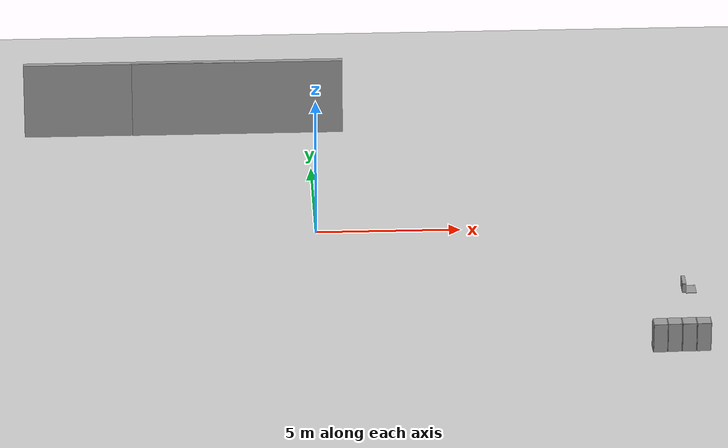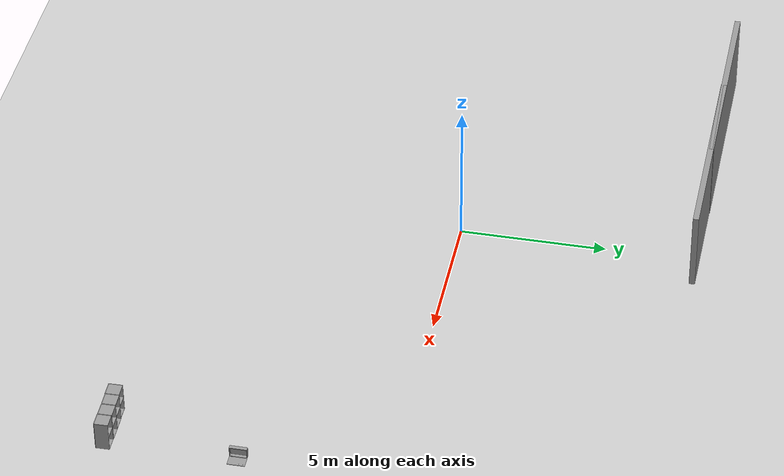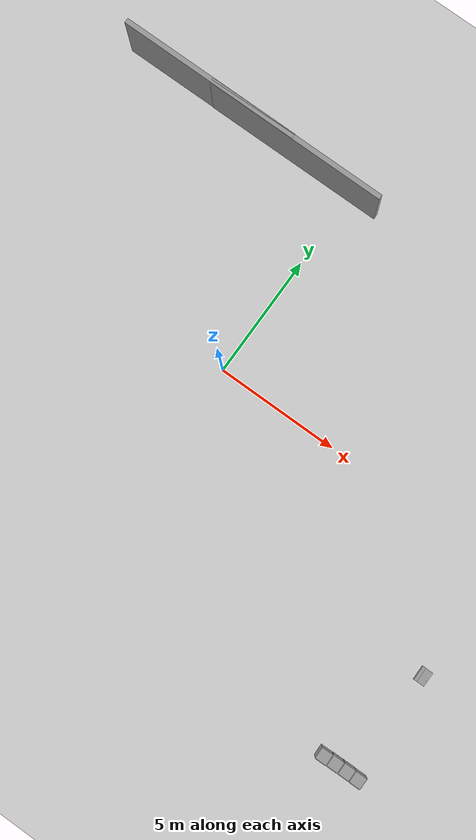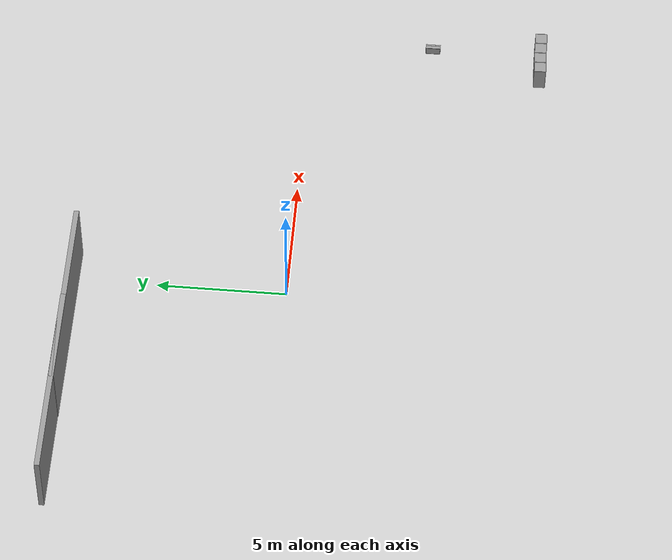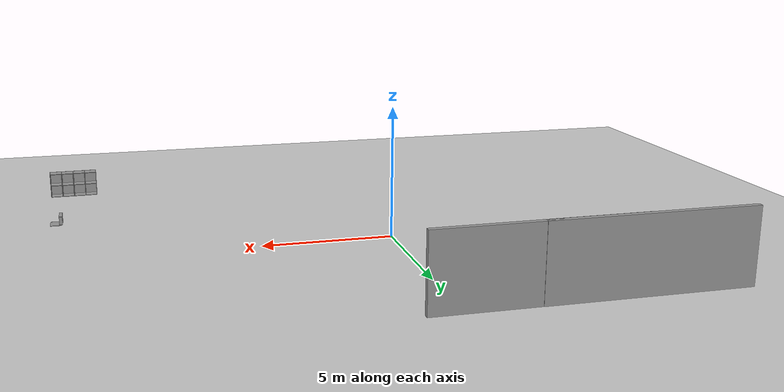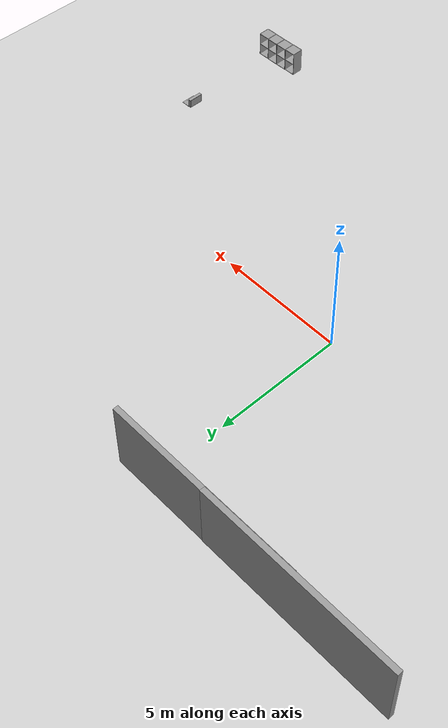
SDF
<sdf version="1.9">
 <world name="factory">
  <model name="grey_wall">
   <static>true</static>
   <link name="link">
    <pose>0 0 1.4 0 -0 0</pose>
    <collision name="collision"><geometry><box><size>7.5 0.2 2.8</size></box></geometry></collision>
    <visual name="visual">
     <cast_shadows>0</cast_shadows>
     <geometry><box><size>7.5 0.2 2.8</size></box></geometry>
     <material>
      <ambient>0.5 0.5 0.5 1</ambient>
      <diffuse>0.6 0.6 0.6 1</diffuse>
      <specular>0.2 0.2 0.2 1</specular>
     </material>
    </visual>
   </link>
   <pose>-6.34942 8.1136 0 0 -0 0</pose>
  </model>
  <model name="grey_wall_clone">
   <static>true</static>
   <link name="link">
    <pose>0 0 1.4 0 -0 0</pose>
    <collision name="collision"><geometry><box><size>7.5 0.2 2.8</size></box></geometry></collision>
    <visual name="visual">
     <cast_shadows>0</cast_shadows>
     <geometry><box><size>7.5 0.2 2.8</size></box></geometry>
     <material>
      <ambient>0.5 0.5 0.5 1</ambient>
      <diffuse>0.6 0.6 0.6 1</diffuse>
      <specular>0.2 0.2 0.2 1</specular>
     </material>
    </visual>
   </link>
   <pose>-2.50623 8.09985 0 0 -0 0</pose>
  </model>
  <model name="cabinet_clone">
   <static>true</static>
   <link name="cabinet_bottom_plate">
    <inertial>
     <pose>0 0 -1 0 -0 0</pose>
     <inertia><ixx>2.05</ixx><ixy>0</ixy><ixz>0</ixz><iyy>2.05</iyy><iyz>0</iyz><izz>2.05</izz></inertia>
     <mass>25</mass>
    </inertial>
    <collision name="cabinet_bottom_plate_geom">
     <pose>0 0 0.01 0 -0 0</pose>
     <geometry><box><size>0.45 0.45 0.02</size></box></geometry>
    </collision>
    <visual name="cabinet_bottom_plate_geom_visual">
     <pose>0 0 0.01 0 -0 0</pose>
     <geometry><box><size>0.45 0.45 0.02</size></box></geometry>
     <material>
      <ambient>0.5 0.5 0.5 1</ambient>
      <diffuse>0.6 0.6 0.6 1</diffuse>
      <specular>0.2 0.2 0.2 1</specular>
     </material>
    </visual>
    <collision name="cabinet_bottom_plate_geom_cabinet_back_plate">
     <pose>0.235 0 0.51 0 -0 0</pose>
     <geometry><box><size>0.02 0.45 1.02</size></box></geometry>
    </collision>
    <visual name="cabinet_bottom_plate_geom_cabinet_back_plate_visual">
     <pose>0.235 0 0.51 0 -0 0</pose>
     <geometry><box><size>0.02 0.45 1.02</size></box></geometry>
     <material>
      <ambient>0.5 0.5 0.5 1</ambient>
      <diffuse>0.6 0.6 0.6 1</diffuse>
      <specular>0.2 0.2 0.2 1</specular>
     </material>
    </visual>
    <collision name="cabinet_bottom_plate_geom_cabinet_left_plate">
     <pose>0 0.235 0.51 0 -0 0</pose>
     <geometry><box><size>0.45 0.02 1.02</size></box></geometry>
    </collision>
    <visual name="cabinet_bottom_plate_geom_cabinet_left_plate_visual">
     <pose>0 0.235 0.51 0 -0 0</pose>
     <geometry><box><size>0.45 0.02 1.02</size></box></geometry>
     <material>
      <ambient>0.5 0.5 0.5 1</ambient>
      <diffuse>0.6 0.6 0.6 1</diffuse>
      <specular>0.2 0.2 0.2 1</specular>
     </material>
    </visual>
    <collision name="cabinet_bottom_plate_geom_cabinet_middle_plate">
     <pose>0 0 0.51 0 -0 0</pose>
     <geometry><box><size>0.45 0.45 0.02</size></box></geometry>
    </collision>
    <visual name="cabinet_bottom_plate_geom_cabinet_middle_plate_visual">
     <pose>0 0 0.51 0 -0 0</pose>
     <geometry><box><size>0.45 0.45 0.02</size></box></geometry>
     <material>
      <ambient>0.5 0.5 0.5 1</ambient>
      <diffuse>0.6 0.6 0.6 1</diffuse>
      <specular>0.2 0.2 0.2 1</specular>
     </material>
    </visual>
    <collision name="cabinet_bottom_plate_geom_cabinet_right_plate">
     <pose>0 -0.235 0.51 0 -0 0</pose>
     <geometry><box><size>0.45 0.02 1.02</size></box></geometry>
    </collision>
    <visual name="cabinet_bottom_plate_geom_cabinet_right_plate_visual">
     <pose>0 -0.235 0.51 0 -0 0</pose>
     <geometry><box><size>0.45 0.02 1.02</size></box></geometry>
     <material>
      <ambient>0.5 0.5 0.5 1</ambient>
      <diffuse>0.6 0.6 0.6 1</diffuse>
      <specular>0.2 0.2 0.2 1</specular>
     </material>
    </visual>
    <collision name="cabinet_bottom_plate_geom_cabinet_top_plate">
     <pose>0 0 1.01 0 -0 0</pose>
     <geometry><box><size>0.45 0.45 0.02</size></box></geometry>
    </collision>
    <visual name="cabinet_bottom_plate_geom_cabinet_top_plate_visual">
     <pose>0 0 1.01 0 -0 0</pose>
     <geometry><box><size>0.45 0.45 0.02</size></box></geometry>
     <material>
      <ambient>0.5 0.5 0.5 1</ambient>
      <diffuse>0.6 0.6 0.6 1</diffuse>
      <specular>0.2 0.2 0.2 1</specular>
     </material>
    </visual>
   </link>
   <pose>12.5585 -9.14446 0.037072 0 0 -1.55676</pose>
  </model>
  <model name="cabinet_clone_0">
   <static>true</static>
   <link name="cabinet_bottom_plate">
    <inertial>
     <pose>0 0 -1 0 -0 0</pose>
     <inertia><ixx>2.05</ixx><ixy>0</ixy><ixz>0</ixz><iyy>2.05</iyy><iyz>0</iyz><izz>2.05</izz></inertia>
     <mass>25</mass>
    </inertial>
    <collision name="cabinet_bottom_plate_geom">
     <pose>0 0 0.01 0 -0 0</pose>
     <geometry><box><size>0.45 0.45 0.02</size></box></geometry>
    </collision>
    <visual name="cabinet_bottom_plate_geom_visual">
     <pose>0 0 0.01 0 -0 0</pose>
     <geometry><box><size>0.45 0.45 0.02</size></box></geometry>
     <material>
      <ambient>0.5 0.5 0.5 1</ambient>
      <diffuse>0.6 0.6 0.6 1</diffuse>
      <specular>0.2 0.2 0.2 1</specular>
     </material>
    </visual>
    <collision name="cabinet_bottom_plate_geom_cabinet_back_plate">
     <pose>0.235 0 0.51 0 -0 0</pose>
     <geometry><box><size>0.02 0.45 1.02</size></box></geometry>
    </collision>
    <visual name="cabinet_bottom_plate_geom_cabinet_back_plate_visual">
     <pose>0.235 0 0.51 0 -0 0</pose>
     <geometry><box><size>0.02 0.45 1.02</size></box></geometry>
     <material>
      <ambient>0.5 0.5 0.5 1</ambient>
      <diffuse>0.6 0.6 0.6 1</diffuse>
      <specular>0.2 0.2 0.2 1</specular>
     </material>
    </visual>
    <collision name="cabinet_bottom_plate_geom_cabinet_left_plate">
     <pose>0 0.235 0.51 0 -0 0</pose>
     <geometry><box><size>0.45 0.02 1.02</size></box></geometry>
    </collision>
    <visual name="cabinet_bottom_plate_geom_cabinet_left_plate_visual">
     <pose>0 0.235 0.51 0 -0 0</pose>
     <geometry><box><size>0.45 0.02 1.02</size></box></geometry>
     <material>
      <ambient>0.5 0.5 0.5 1</ambient>
      <diffuse>0.6 0.6 0.6 1</diffuse>
      <specular>0.2 0.2 0.2 1</specular>
     </material>
    </visual>
    <collision name="cabinet_bottom_plate_geom_cabinet_middle_plate">
     <pose>0 0 0.51 0 -0 0</pose>
     <geometry><box><size>0.45 0.45 0.02</size></box></geometry>
    </collision>
    <visual name="cabinet_bottom_plate_geom_cabinet_middle_plate_visual">
     <pose>0 0 0.51 0 -0 0</pose>
     <geometry><box><size>0.45 0.45 0.02</size></box></geometry>
     <material>
      <ambient>0.5 0.5 0.5 1</ambient>
      <diffuse>0.6 0.6 0.6 1</diffuse>
      <specular>0.2 0.2 0.2 1</specular>
     </material>
    </visual>
    <collision name="cabinet_bottom_plate_geom_cabinet_right_plate">
     <pose>0 -0.235 0.51 0 -0 0</pose>
     <geometry><box><size>0.45 0.02 1.02</size></box></geometry>
    </collision>
    <visual name="cabinet_bottom_plate_geom_cabinet_right_plate_visual">
     <pose>0 -0.235 0.51 0 -0 0</pose>
     <geometry><box><size>0.45 0.02 1.02</size></box></geometry>
     <material>
      <ambient>0.5 0.5 0.5 1</ambient>
      <diffuse>0.6 0.6 0.6 1</diffuse>
      <specular>0.2 0.2 0.2 1</specular>
     </material>
    </visual>
    <collision name="cabinet_bottom_plate_geom_cabinet_top_plate">
     <pose>0 0 1.01 0 -0 0</pose>
     <geometry><box><size>0.45 0.45 0.02</size></box></geometry>
    </collision>
    <visual name="cabinet_bottom_plate_geom_cabinet_top_plate_visual">
     <pose>0 0 1.01 0 -0 0</pose>
     <geometry><box><size>0.45 0.45 0.02</size></box></geometry>
     <material>
      <ambient>0.5 0.5 0.5 1</ambient>
      <diffuse>0.6 0.6 0.6 1</diffuse>
      <specular>0.2 0.2 0.2 1</specular>
     </material>
    </visual>
   </link>
   <pose>12.0748 -9.14339 0.037072 0 0 -1.55676</pose>
  </model>
  <model name="cabinet_clone_1">
   <static>true</static>
   <link name="cabinet_bottom_plate">
    <inertial>
     <pose>0 0 -1 0 -0 0</pose>
     <inertia><ixx>2.05</ixx><ixy>0</ixy><ixz>0</ixz><iyy>2.05</iyy><iyz>0</iyz><izz>2.05</izz></inertia>
     <mass>25</mass>
    </inertial>
    <collision name="cabinet_bottom_plate_geom">
     <pose>0 0 0.01 0 -0 0</pose>
     <geometry><box><size>0.45 0.45 0.02</size></box></geometry>
    </collision>
    <visual name="cabinet_bottom_plate_geom_visual">
     <pose>0 0 0.01 0 -0 0</pose>
     <geometry><box><size>0.45 0.45 0.02</size></box></geometry>
     <material>
      <ambient>0.5 0.5 0.5 1</ambient>
      <diffuse>0.6 0.6 0.6 1</diffuse>
      <specular>0.2 0.2 0.2 1</specular>
     </material>
    </visual>
    <collision name="cabinet_bottom_plate_geom_cabinet_back_plate">
     <pose>0.235 0 0.51 0 -0 0</pose>
     <geometry><box><size>0.02 0.45 1.02</size></box></geometry>
    </collision>
    <visual name="cabinet_bottom_plate_geom_cabinet_back_plate_visual">
     <pose>0.235 0 0.51 0 -0 0</pose>
     <geometry><box><size>0.02 0.45 1.02</size></box></geometry>
     <material>
      <ambient>0.5 0.5 0.5 1</ambient>
      <diffuse>0.6 0.6 0.6 1</diffuse>
      <specular>0.2 0.2 0.2 1</specular>
     </material>
    </visual>
    <collision name="cabinet_bottom_plate_geom_cabinet_left_plate">
     <pose>0 0.235 0.51 0 -0 0</pose>
     <geometry><box><size>0.45 0.02 1.02</size></box></geometry>
    </collision>
    <visual name="cabinet_bottom_plate_geom_cabinet_left_plate_visual">
     <pose>0 0.235 0.51 0 -0 0</pose>
     <geometry><box><size>0.45 0.02 1.02</size></box></geometry>
     <material>
      <ambient>0.5 0.5 0.5 1</ambient>
      <diffuse>0.6 0.6 0.6 1</diffuse>
      <specular>0.2 0.2 0.2 1</specular>
     </material>
    </visual>
    <collision name="cabinet_bottom_plate_geom_cabinet_middle_plate">
     <pose>0 0 0.51 0 -0 0</pose>
     <geometry><box><size>0.45 0.45 0.02</size></box></geometry>
    </collision>
    <visual name="cabinet_bottom_plate_geom_cabinet_middle_plate_visual">
     <pose>0 0 0.51 0 -0 0</pose>
     <geometry><box><size>0.45 0.45 0.02</size></box></geometry>
     <material>
      <ambient>0.5 0.5 0.5 1</ambient>
      <diffuse>0.6 0.6 0.6 1</diffuse>
      <specular>0.2 0.2 0.2 1</specular>
     </material>
    </visual>
    <collision name="cabinet_bottom_plate_geom_cabinet_right_plate">
     <pose>0 -0.235 0.51 0 -0 0</pose>
     <geometry><box><size>0.45 0.02 1.02</size></box></geometry>
    </collision>
    <visual name="cabinet_bottom_plate_geom_cabinet_right_plate_visual">
     <pose>0 -0.235 0.51 0 -0 0</pose>
     <geometry><box><size>0.45 0.02 1.02</size></box></geometry>
     <material>
      <ambient>0.5 0.5 0.5 1</ambient>
      <diffuse>0.6 0.6 0.6 1</diffuse>
      <specular>0.2 0.2 0.2 1</specular>
     </material>
    </visual>
    <collision name="cabinet_bottom_plate_geom_cabinet_top_plate">
     <pose>0 0 1.01 0 -0 0</pose>
     <geometry><box><size>0.45 0.45 0.02</size></box></geometry>
    </collision>
    <visual name="cabinet_bottom_plate_geom_cabinet_top_plate_visual">
     <pose>0 0 1.01 0 -0 0</pose>
     <geometry><box><size>0.45 0.45 0.02</size></box></geometry>
     <material>
      <ambient>0.5 0.5 0.5 1</ambient>
      <diffuse>0.6 0.6 0.6 1</diffuse>
      <specular>0.2 0.2 0.2 1</specular>
     </material>
    </visual>
   </link>
   <pose>11.5886 -9.15198 0.037072 0 0 -1.55676</pose>
  </model>
  <model name="cabinet_clone_2">
   <static>true</static>
   <link name="cabinet_bottom_plate">
    <inertial>
     <pose>0 0 -1 0 -0 0</pose>
     <inertia><ixx>2.05</ixx><ixy>0</ixy><ixz>0</ixz><iyy>2.05</iyy><iyz>0</iyz><izz>2.05</izz></inertia>
     <mass>25</mass>
    </inertial>
    <collision name="cabinet_bottom_plate_geom">
     <pose>0 0 0.01 0 -0 0</pose>
     <geometry><box><size>0.45 0.45 0.02</size></box></geometry>
    </collision>
    <visual name="cabinet_bottom_plate_geom_visual">
     <pose>0 0 0.01 0 -0 0</pose>
     <geometry><box><size>0.45 0.45 0.02</size></box></geometry>
     <material>
      <ambient>0.5 0.5 0.5 1</ambient>
      <diffuse>0.6 0.6 0.6 1</diffuse>
      <specular>0.2 0.2 0.2 1</specular>
     </material>
    </visual>
    <collision name="cabinet_bottom_plate_geom_cabinet_back_plate">
     <pose>0.235 0 0.51 0 -0 0</pose>
     <geometry><box><size>0.02 0.45 1.02</size></box></geometry>
    </collision>
    <visual name="cabinet_bottom_plate_geom_cabinet_back_plate_visual">
     <pose>0.235 0 0.51 0 -0 0</pose>
     <geometry><box><size>0.02 0.45 1.02</size></box></geometry>
     <material>
      <ambient>0.5 0.5 0.5 1</ambient>
      <diffuse>0.6 0.6 0.6 1</diffuse>
      <specular>0.2 0.2 0.2 1</specular>
     </material>
    </visual>
    <collision name="cabinet_bottom_plate_geom_cabinet_left_plate">
     <pose>0 0.235 0.51 0 -0 0</pose>
     <geometry><box><size>0.45 0.02 1.02</size></box></geometry>
    </collision>
    <visual name="cabinet_bottom_plate_geom_cabinet_left_plate_visual">
     <pose>0 0.235 0.51 0 -0 0</pose>
     <geometry><box><size>0.45 0.02 1.02</size></box></geometry>
     <material>
      <ambient>0.5 0.5 0.5 1</ambient>
      <diffuse>0.6 0.6 0.6 1</diffuse>
      <specular>0.2 0.2 0.2 1</specular>
     </material>
    </visual>
    <collision name="cabinet_bottom_plate_geom_cabinet_middle_plate">
     <pose>0 0 0.51 0 -0 0</pose>
     <geometry><box><size>0.45 0.45 0.02</size></box></geometry>
    </collision>
    <visual name="cabinet_bottom_plate_geom_cabinet_middle_plate_visual">
     <pose>0 0 0.51 0 -0 0</pose>
     <geometry><box><size>0.45 0.45 0.02</size></box></geometry>
     <material>
      <ambient>0.5 0.5 0.5 1</ambient>
      <diffuse>0.6 0.6 0.6 1</diffuse>
      <specular>0.2 0.2 0.2 1</specular>
     </material>
    </visual>
    <collision name="cabinet_bottom_plate_geom_cabinet_right_plate">
     <pose>0 -0.235 0.51 0 -0 0</pose>
     <geometry><box><size>0.45 0.02 1.02</size></box></geometry>
    </collision>
    <visual name="cabinet_bottom_plate_geom_cabinet_right_plate_visual">
     <pose>0 -0.235 0.51 0 -0 0</pose>
     <geometry><box><size>0.45 0.02 1.02</size></box></geometry>
     <material>
      <ambient>0.5 0.5 0.5 1</ambient>
      <diffuse>0.6 0.6 0.6 1</diffuse>
      <specular>0.2 0.2 0.2 1</specular>
     </material>
    </visual>
    <collision name="cabinet_bottom_plate_geom_cabinet_top_plate">
     <pose>0 0 1.01 0 -0 0</pose>
     <geometry><box><size>0.45 0.45 0.02</size></box></geometry>
    </collision>
    <visual name="cabinet_bottom_plate_geom_cabinet_top_plate_visual">
     <pose>0 0 1.01 0 -0 0</pose>
     <geometry><box><size>0.45 0.45 0.02</size></box></geometry>
     <material>
      <ambient>0.5 0.5 0.5 1</ambient>
      <diffuse>0.6 0.6 0.6 1</diffuse>
      <specular>0.2 0.2 0.2 1</specular>
     </material>
    </visual>
   </link>
   <pose>11.1088 -9.16946 0.037072 0 0 -1.55676</pose>
  </model>
  <model name="wooden_case_clone">
   <static>true</static>
   <link name="base">
    <pose>0 0 0.024 0 -0 0</pose>
    <inertial>
     <pose>-0.022184 0 0.171592 0 -0 0</pose>
     <mass>3.96264</mass>
     <inertia>
      <ixx>0.213536</ixx>
      <ixy>0</ixy>
      <ixz>0.000779377</ixz>
      <iyy>0.0708943</iyy>
      <iyz>0</iyz>
      <izz>0.154604</izz>
     </inertia>
    </inertial>
    <collision name="collision_back">
     <pose>-0.053975 0 0.1778 0 -0 0</pose>
     <geometry><box><size>0.01905 0.5461 0.3175</size></box></geometry>
     <surface>
      <contact>
       <poissons_ratio>0.347</poissons_ratio>
       <elastic_modulus>8.8e+09</elastic_modulus>
       <ode><kp>100000</kp><kd>100</kd><max_vel>100</max_vel><min_depth>0.001</min_depth></ode>
      </contact>
      <friction>
       <torsional>
        <coefficient>1</coefficient>
        <use_patch_radius>0</use_patch_radius>
        <surface_radius>0.01</surface_radius>
       </torsional>
      </friction>
     </surface>
    </collision>
    <visual name="visual_back">
     <pose>-0.053975 0 0.1778 0 -0 0</pose>
     <geometry><box><size>0.01905 0.5461 0.3175</size></box></geometry>
     <material>
      <ambient>0.5 0.5 0.5 1</ambient>
      <diffuse>0.6 0.6 0.6 1</diffuse>
      <specular>0.2 0.2 0.2 1</specular>
     </material>
    </visual>
    <collision name="collision_bottom">
     <pose>0 0 0.009525 0 -0 0</pose>
     <geometry><box><size>0.127 0.5842 0.01905</size></box></geometry>
     <surface>
      <contact>
       <poissons_ratio>0.347</poissons_ratio>
       <elastic_modulus>8.8e+09</elastic_modulus>
       <ode><kp>100000</kp><kd>100</kd><max_vel>100</max_vel><min_depth>0.001</min_depth></ode>
      </contact>
      <friction>
       <torsional>
        <coefficient>1</coefficient>
        <use_patch_radius>0</use_patch_radius>
        <surface_radius>0.01</surface_radius>
       </torsional>
      </friction>
     </surface>
    </collision>
    <visual name="visual_bottom">
     <pose>0 0 0.009525 0 -0 0</pose>
     <geometry><box><size>0.127 0.5842 0.01905</size></box></geometry>
     <material>
      <ambient>0.5 0.5 0.5 1</ambient>
      <diffuse>0.6 0.6 0.6 1</diffuse>
      <specular>0.2 0.2 0.2 1</specular>
     </material>
    </visual>
    <collision name="collision_top">
     <pose>0 0 0.346075 0 -0 0</pose>
     <geometry><box><size>0.127 0.5842 0.01905</size></box></geometry>
     <surface>
      <contact>
       <poissons_ratio>0.347</poissons_ratio>
       <elastic_modulus>8.8e+09</elastic_modulus>
       <ode><kp>100000</kp><kd>100</kd><max_vel>100</max_vel><min_depth>0.001</min_depth></ode>
      </contact>
      <friction>
       <torsional>
        <coefficient>1</coefficient>
        <use_patch_radius>0</use_patch_radius>
        <surface_radius>0.01</surface_radius>
       </torsional>
      </friction>
     </surface>
    </collision>
    <visual name="visual_top">
     <pose>0 0 0.346075 0 -0 0</pose>
     <geometry><box><size>0.127 0.5842 0.01905</size></box></geometry>
     <material>
      <ambient>0.5 0.5 0.5 1</ambient>
      <diffuse>0.6 0.6 0.6 1</diffuse>
      <specular>0.2 0.2 0.2 1</specular>
     </material>
    </visual>
    <collision name="collision_left">
     <pose>0 -0.282575 0.1778 0 -0 0</pose>
     <geometry><box><size>0.127 0.01905 0.3175</size></box></geometry>
     <surface>
      <contact>
       <poissons_ratio>0.347</poissons_ratio>
       <elastic_modulus>8.8e+09</elastic_modulus>
       <ode><kp>100000</kp><kd>100</kd><max_vel>100</max_vel><min_depth>0.001</min_depth></ode>
      </contact>
      <friction>
       <torsional>
        <coefficient>1</coefficient>
        <use_patch_radius>0</use_patch_radius>
        <surface_radius>0.01</surface_radius>
       </torsional>
      </friction>
     </surface>
    </collision>
    <visual name="visual_left">
     <pose>0 -0.282575 0.1778 0 -0 0</pose>
     <geometry><box><size>0.127 0.01905 0.3175</size></box></geometry>
     <material>
      <ambient>0.5 0.5 0.5 1</ambient>
      <diffuse>0.6 0.6 0.6 1</diffuse>
      <specular>0.2 0.2 0.2 1</specular>
     </material>
    </visual>
    <collision name="collision_right">
     <pose>0 0.282575 0.1778 0 -0 0</pose>
     <geometry><box><size>0.127 0.01905 0.3175</size></box></geometry>
     <surface>
      <contact>
       <poissons_ratio>0.347</poissons_ratio>
       <elastic_modulus>8.8e+09</elastic_modulus>
       <ode><kp>100000</kp><kd>100</kd><max_vel>100</max_vel><min_depth>0.001</min_depth></ode>
      </contact>
      <friction>
       <torsional>
        <coefficient>1</coefficient>
        <use_patch_radius>0</use_patch_radius>
        <surface_radius>0.01</surface_radius>
       </torsional>
      </friction>
     </surface>
    </collision>
    <visual name="visual_right">
     <pose>0 0.282575 0.1778 0 -0 0</pose>
     <geometry><box><size>0.127 0.01905 0.3175</size></box></geometry>
     <material>
      <ambient>0.5 0.5 0.5 1</ambient>
      <diffuse>0.6 0.6 0.6 1</diffuse>
      <specular>0.2 0.2 0.2 1</specular>
     </material>
    </visual>
    <collision name="collision_block_left">
     <pose>0.0095 -0.2151 -0.012 0 -0 0</pose>
     <geometry><box><size>0.108 0.05 0.024</size></box></geometry>
     <surface>
      <contact>
       <poissons_ratio>0.347</poissons_ratio>
       <elastic_modulus>8.8e+09</elastic_modulus>
       <ode><kp>100000</kp><kd>100</kd><max_vel>100</max_vel><min_depth>0.001</min_depth></ode>
      </contact>
      <friction>
       <torsional>
        <coefficient>1</coefficient>
        <use_patch_radius>0</use_patch_radius>
        <surface_radius>0.01</surface_radius>
       </torsional>
      </friction>
     </surface>
    </collision>
    <visual name="visual_block_left">
     <pose>0.0095 -0.2151 -0.012 0 -0 0</pose>
     <geometry><box><size>0.108 0.05 0.024</size></box></geometry>
     <material>
      <ambient>0.5 0.5 0.5 1</ambient>
      <diffuse>0.6 0.6 0.6 1</diffuse>
      <specular>0.2 0.2 0.2 1</specular>
     </material>
    </visual>
    <collision name="collision_block_right">
     <pose>0.0095 0.2151 -0.012 0 -0 0</pose>
     <geometry><box><size>0.108 0.05 0.024</size></box></geometry>
     <surface>
      <contact>
       <poissons_ratio>0.347</poissons_ratio>
       <elastic_modulus>8.8e+09</elastic_modulus>
       <ode><kp>100000</kp><kd>100</kd><max_vel>100</max_vel><min_depth>0.001</min_depth></ode>
      </contact>
      <friction>
       <torsional>
        <coefficient>1</coefficient>
        <use_patch_radius>0</use_patch_radius>
        <surface_radius>0.01</surface_radius>
       </torsional>
      </friction>
     </surface>
    </collision>
    <visual name="visual_block_right">
     <pose>0.0095 0.2151 -0.012 0 -0 0</pose>
     <geometry><box><size>0.108 0.05 0.024</size></box></geometry>
     <material>
      <ambient>0.5 0.5 0.5 1</ambient>
      <diffuse>0.6 0.6 0.6 1</diffuse>
      <specular>0.2 0.2 0.2 1</specular>
     </material>
    </visual>
   </link>
   <link name="lid">
    <pose>0.243775 0 0.009525 0 -0 0</pose>
    <inertial>
     <mass>1.97874</mass>
     <inertia>
      <ixx>0.0563367</ixx>
      <ixy>0</ixy>
      <ixz>0</ixz>
      <iyy>0.020911</iyy>
      <iyz>0</iyz>
      <izz>0.0771281</izz>
     </inertia>
    </inertial>
    <collision name="collision">
     <geometry><box><size>0.3556 0.5842 0.01905</size></box></geometry>
     <surface>
      <contact>
       <poissons_ratio>0.347</poissons_ratio>
       <elastic_modulus>8.8e+09</elastic_modulus>
       <ode><kp>100000</kp><kd>100</kd><max_vel>100</max_vel><min_depth>0.001</min_depth></ode>
      </contact>
      <friction>
       <torsional>
        <coefficient>1</coefficient>
        <use_patch_radius>0</use_patch_radius>
        <surface_radius>0.01</surface_radius>
       </torsional>
      </friction>
     </surface>
    </collision>
    <visual name="visual">
     <geometry><box><size>0.3556 0.5842 0.01905</size></box></geometry>
     <material>
      <ambient>0.5 0.5 0.5 1</ambient>
      <diffuse>0.6 0.6 0.6 1</diffuse>
      <specular>0.2 0.2 0.2 1</specular>
     </material>
    </visual>
    <visual name="tee_nut_1">
     <pose>0.122 -0.216 0 0 -0 0</pose>
     <geometry><cylinder><radius>0.00635</radius><length>0.0192405</length></cylinder></geometry>
     <material>
      <ambient>0.5 0.5 0.5 1</ambient>
      <diffuse>0.6 0.6 0.6 1</diffuse>
      <specular>0.2 0.2 0.2 1</specular>
     </material>
    </visual>
    <visual name="tee_nut_2">
     <pose>0.122 -0.088 0 0 -0 0</pose>
     <geometry><cylinder><radius>0.00635</radius><length>0.0192405</length></cylinder></geometry>
     <material>
      <ambient>0.5 0.5 0.5 1</ambient>
      <diffuse>0.6 0.6 0.6 1</diffuse>
      <specular>0.2 0.2 0.2 1</specular>
     </material>
    </visual>
    <visual name="tee_nut_3">
     <pose>0.122 0.088 0 0 -0 0</pose>
     <geometry><cylinder><radius>0.00635</radius><length>0.0192405</length></cylinder></geometry>
     <material>
      <ambient>0.5 0.5 0.5 1</ambient>
      <diffuse>0.6 0.6 0.6 1</diffuse>
      <specular>0.2 0.2 0.2 1</specular>
     </material>
    </visual>
    <visual name="tee_nut_4">
     <pose>0.122 0.216 0 0 -0 0</pose>
     <geometry><cylinder><radius>0.00635</radius><length>0.0192405</length></cylinder></geometry>
     <material>
      <ambient>0.5 0.5 0.5 1</ambient>
      <diffuse>0.6 0.6 0.6 1</diffuse>
      <specular>0.2 0.2 0.2 1</specular>
     </material>
    </visual>
   </link>
   <joint name="lid_hinge" type="revolute">
    <pose>-0.1778 0 0.01905 0 -0 0</pose>
    <parent>base</parent>
    <child>lid</child>
    <axis>
     <xyz>0 1 0</xyz>
     <limit><upper>0.523599</upper><lower>-1.5708</lower></limit>
     <dynamics><spring_reference>0</spring_reference><spring_stiffness>0</spring_stiffness></dynamics>
    </axis>
   </joint>
   <pose>12.2927 -4.84304 -0.001057 0 -0.000431 0</pose>
  </model>
  <model name="ground">
   <static>true</static>
   <pose>0 0 -0.01 0 0 0</pose>
   <link name="link">
    <collision name="collision">
     <geometry><plane><normal>0 0 1</normal><size>100 100</size></plane></geometry>
    </collision>
    <visual name="visual">
     <geometry><plane><normal>0 0 1</normal><size>100 100</size></plane></geometry>
     <material><ambient>0.8 0.8 0.8 1</ambient><diffuse>0.8 0.8 0.8 1</diffuse></material>
    </visual>
   </link>
  </model>
 </world>
</sdf>
